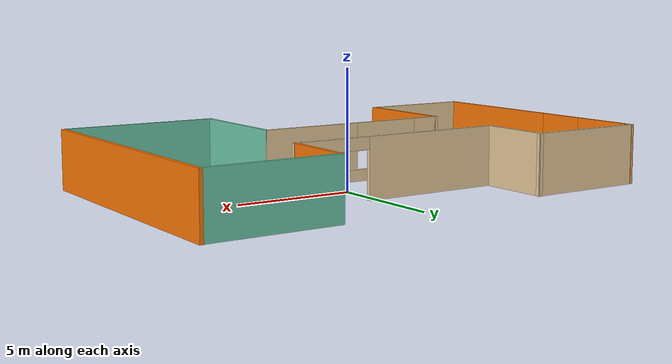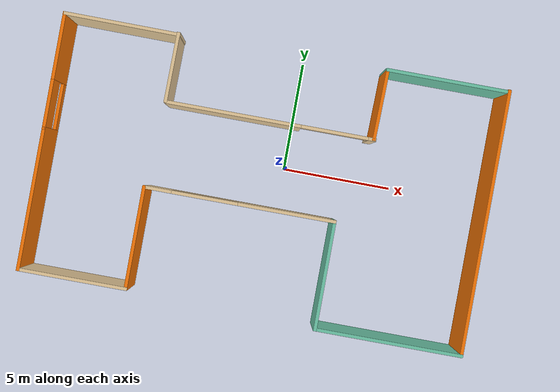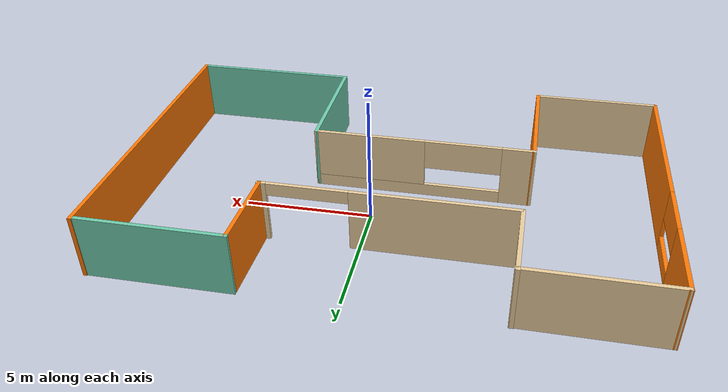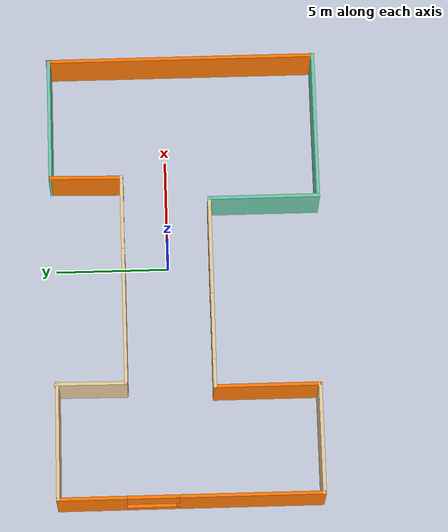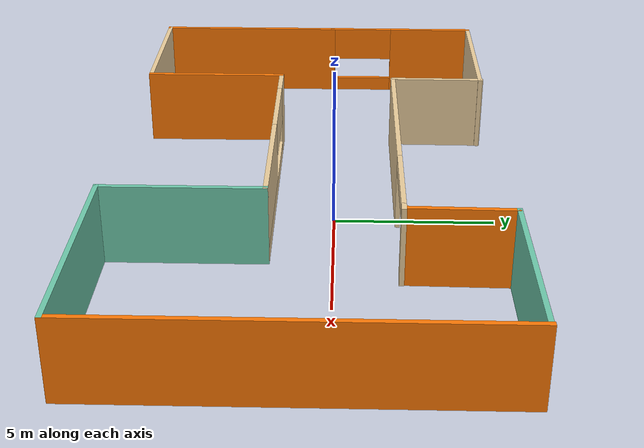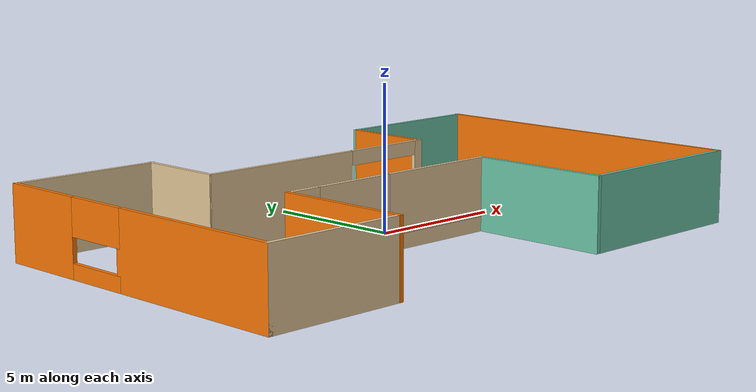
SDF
<?xml version='1.0'?>
<sdf version='1.6'>
  <model name='mwrld'>
    <pose frame=''>-0.841201 -0.809512 0 0 -0 0</pose>
    <link name='Wall_0'>
      <collision name='Wall_0_Collision'>
        <geometry>
          <box>
            <size>6.5 0.15 2.5</size>
          </box>
        </geometry>
        <pose frame=''>0 0 1.25 0 -0 0</pose>
      </collision>
      <visual name='Wall_0_Visual'>
        <pose frame=''>0 0 1.25 0 -0 0</pose>
        <geometry>
          <box>
            <size>6.5 0.15 2.5</size>
          </box>
        </geometry>
        <material>
          <script>
            <uri>file://media/materials/scripts/gazebo.material</uri>
            <name>Gazebo/Grey</name>
          </script>
          <ambient>0.996078 0.47451 0.0196078 1</ambient>
        </material>
      </visual>
      <pose frame=''>-10.025 -2.54481 0 0 0 -1.5708</pose>
    </link>
    <link name='Wall_1'>
      <collision name='Wall_1_Collision'>
        <geometry>
          <box>
            <size>5 0.15 2.5</size>
          </box>
        </geometry>
        <pose frame=''>0 0 1.25 0 -0 0</pose>
      </collision>
      <visual name='Wall_1_Visual'>
        <pose frame=''>0 0 1.25 0 -0 0</pose>
        <geometry>
          <box>
            <size>5 0.15 2.5</size>
          </box>
        </geometry>
        <material>
          <script>
            <uri>file://media/materials/scripts/gazebo.material</uri>
            <name>Gazebo/Grey</name>
          </script>
          <ambient>0.921569 0.807843 0.615686 1</ambient>
        </material>
      </visual>
      <pose frame=''>-7.6 -5.71981 0 0 -0 0</pose>
    </link>
    <link name='Wall_10'>
      <collision name='Wall_10_Collision'>
        <geometry>
          <box>
            <size>3.17734 0.15 2.5</size>
          </box>
        </geometry>
        <pose frame=''>0 0 1.25 0 -0 0</pose>
      </collision>
      <visual name='Wall_10_Visual'>
        <pose frame=''>0 0 1.25 0 -0 0</pose>
        <geometry>
          <box>
            <size>3.17734 0.15 2.5</size>
          </box>
        </geometry>
        <material>
          <script>
            <uri>file://media/materials/scripts/gazebo.material</uri>
            <name>Gazebo/Grey</name>
          </script>
          <ambient>0.921569 0.807843 0.615686 1</ambient>
        </material>
      </visual>
      <pose frame=''>-4.91175 4.3233 0 0 -0 1.56069</pose>
    </link>
    <link name='Wall_11'>
      <collision name='Wall_11_Collision'>
        <geometry>
          <box>
            <size>5.27864 0.15 2.5</size>
          </box>
        </geometry>
        <pose frame=''>0 0 1.25 0 -0 0</pose>
      </collision>
      <visual name='Wall_11_Visual'>
        <pose frame=''>0 0 1.25 0 -0 0</pose>
        <geometry>
          <box>
            <size>5.27864 0.15 2.5</size>
          </box>
        </geometry>
        <material>
          <script>
            <uri>file://media/materials/scripts/gazebo.material</uri>
            <name>Gazebo/Grey</name>
          </script>
          <ambient>0.921569 0.807843 0.615686 1</ambient>
        </material>
      </visual>
      <pose frame=''>-7.43013 5.82159 0 0 -0 3.13563</pose>
    </link>
    <link name='Wall_12'>
      <pose frame=''>-10.025 3.23354 0 0 0 -1.5708</pose>
      <visual name='Wall_12_Visual_0'>
        <pose frame=''>-1.1507 0 1.25 0 -0 0</pose>
        <geometry>
          <box>
            <size>3.0553 0.15 2.5</size>
          </box>
        </geometry>
        <material>
          <script>
            <uri>file://media/materials/scripts/gazebo.material</uri>
            <name>Gazebo/Grey</name>
          </script>
          <ambient>0.996078 0.47451 0.0196078 1</ambient>
        </material>
      </visual>
      <collision name='Wall_12_Collision_0'>
        <geometry>
          <box>
            <size>3.0553 0.15 2.5</size>
          </box>
        </geometry>
        <pose frame=''>-1.1507 0 1.25 0 -0 0</pose>
      </collision>
      <visual name='Wall_12_Visual_1'>
        <pose frame=''>1.52765 0 0.25 0 -0 0</pose>
        <geometry>
          <box>
            <size>2.30139 0.15 0.5</size>
          </box>
        </geometry>
        <material>
          <script>
            <uri>file://media/materials/scripts/gazebo.material</uri>
            <name>Gazebo/Grey</name>
          </script>
          <ambient>0.996078 0.47451 0.0196078 1</ambient>
        </material>
      </visual>
      <collision name='Wall_12_Collision_1'>
        <geometry>
          <box>
            <size>2.30139 0.15 0.5</size>
          </box>
        </geometry>
        <pose frame=''>1.52765 0 0.25 0 -0 0</pose>
      </collision>
      <visual name='Wall_12_Visual_2'>
        <pose frame=''>1.52765 0 1.9 0 -0 0</pose>
        <geometry>
          <box>
            <size>2.30139 0.15 1.2</size>
          </box>
        </geometry>
        <material>
          <script>
            <uri>file://media/materials/scripts/gazebo.material</uri>
            <name>Gazebo/Grey</name>
          </script>
          <ambient>0.996078 0.47451 0.0196078 1</ambient>
        </material>
      </visual>
      <collision name='Wall_12_Collision_2'>
        <geometry>
          <box>
            <size>2.30139 0.15 1.2</size>
          </box>
        </geometry>
        <pose frame=''>1.52765 0 1.9 0 -0 0</pose>
      </collision>
    </link>
    <link name='Wall_2'>
      <collision name='Wall_2_Collision'>
        <geometry>
          <box>
            <size>4.75 0.15 2.5</size>
          </box>
        </geometry>
        <pose frame=''>0 0 1.25 0 -0 0</pose>
      </collision>
      <visual name='Wall_2_Visual'>
        <pose frame=''>0 0 1.25 0 -0 0</pose>
        <geometry>
          <box>
            <size>4.75 0.15 2.5</size>
          </box>
        </geometry>
        <material>
          <script>
            <uri>file://media/materials/scripts/gazebo.material</uri>
            <name>Gazebo/Grey</name>
          </script>
          <ambient>0.996078 0.47451 0.0196078 1</ambient>
        </material>
      </visual>
      <pose frame=''>-5.175 -3.41981 0 0 -0 1.5708</pose>
    </link>
    <link name='Wall_3'>
      <pose frame=''>-0.875 -1.11981 0 0 -0 0</pose>
      <visual name='Wall_3_Visual_0'>
        <pose frame=''>-3.72637 0 1.25 0 -0 0</pose>
        <geometry>
          <box>
            <size>1.29726 0.15 2.5</size>
          </box>
        </geometry>
        <material>
          <script>
            <uri>file://media/materials/scripts/gazebo.material</uri>
            <name>Gazebo/Grey</name>
          </script>
          <ambient>0.921569 0.807843 0.615686 1</ambient>
        </material>
      </visual>
      <collision name='Wall_3_Collision_0'>
        <geometry>
          <box>
            <size>1.29726 0.15 2.5</size>
          </box>
        </geometry>
        <pose frame=''>-3.72637 0 1.25 0 -0 0</pose>
      </collision>
      <visual name='Wall_3_Visual_1'>
        <pose frame=''>0.648629 0 0.25 0 -0 0</pose>
        <geometry>
          <box>
            <size>7.45274 0.15 0.5</size>
          </box>
        </geometry>
        <material>
          <script>
            <uri>file://media/materials/scripts/gazebo.material</uri>
            <name>Gazebo/Grey</name>
          </script>
          <ambient>0.921569 0.807843 0.615686 1</ambient>
        </material>
      </visual>
      <collision name='Wall_3_Collision_1'>
        <geometry>
          <box>
            <size>7.45274 0.15 0.5</size>
          </box>
        </geometry>
        <pose frame=''>0.648629 0 0.25 0 -0 0</pose>
      </collision>
      <visual name='Wall_3_Visual_2'>
        <pose frame=''>2.14988 0 1.5 0 -0 0</pose>
        <geometry>
          <box>
            <size>4.45024 0.15 2</size>
          </box>
        </geometry>
        <material>
          <script>
            <uri>file://media/materials/scripts/gazebo.material</uri>
            <name>Gazebo/Grey</name>
          </script>
          <ambient>0.921569 0.807843 0.615686 1</ambient>
        </material>
      </visual>
      <collision name='Wall_3_Collision_2'>
        <geometry>
          <box>
            <size>4.45024 0.15 2</size>
          </box>
        </geometry>
        <pose frame=''>2.14988 0 1.5 0 -0 0</pose>
      </collision>
      <visual name='Wall_3_Visual_3'>
        <pose frame=''>-1.57649 0 1.9 0 -0 0</pose>
        <geometry>
          <box>
            <size>3.0025 0.15 1.2</size>
          </box>
        </geometry>
        <material>
          <script>
            <uri>file://media/materials/scripts/gazebo.material</uri>
            <name>Gazebo/Grey</name>
          </script>
          <ambient>0.921569 0.807843 0.615686 1</ambient>
        </material>
      </visual>
      <collision name='Wall_3_Collision_3'>
        <geometry>
          <box>
            <size>3.0025 0.15 1.2</size>
          </box>
        </geometry>
        <pose frame=''>-1.57649 0 1.9 0 -0 0</pose>
      </collision>
    </link>
    <link name='Wall_4'>
      <collision name='Wall_4_Collision'>
        <geometry>
          <box>
            <size>5 0.15 2.5</size>
          </box>
        </geometry>
        <pose frame=''>0 0 1.25 0 -0 0</pose>
      </collision>
      <visual name='Wall_4_Visual'>
        <pose frame=''>0 0 1.25 0 -0 0</pose>
        <geometry>
          <box>
            <size>5 0.15 2.5</size>
          </box>
        </geometry>
        <material>
          <script>
            <uri>file://media/materials/scripts/gazebo.material</uri>
            <name>Gazebo/Grey</name>
          </script>
          <ambient>0.435294 0.796078 0.67451 1</ambient>
        </material>
      </visual>
      <pose frame=''>3.425 -3.54481 0 0 0 -1.5708</pose>
    </link>
    <link name='Wall_5'>
      <collision name='Wall_5_Collision'>
        <geometry>
          <box>
            <size>6.75 0.15 2.5</size>
          </box>
        </geometry>
        <pose frame=''>0 0 1.25 0 -0 0</pose>
      </collision>
      <visual name='Wall_5_Visual'>
        <pose frame=''>0 0 1.25 0 -0 0</pose>
        <geometry>
          <box>
            <size>6.75 0.15 2.5</size>
          </box>
        </geometry>
        <material>
          <script>
            <uri>file://media/materials/scripts/gazebo.material</uri>
            <name>Gazebo/Grey</name>
          </script>
          <ambient>0.435294 0.796078 0.67451 1</ambient>
        </material>
      </visual>
      <pose frame=''>6.725 -5.96981 0 0 -0 0</pose>
    </link>
    <link name='Wall_6'>
      <collision name='Wall_6_Collision'>
        <geometry>
          <box>
            <size>12.0896 0.15 2.5</size>
          </box>
        </geometry>
        <pose frame=''>0 0 1.25 0 -0 0</pose>
      </collision>
      <visual name='Wall_6_Visual'>
        <pose frame=''>0 0 1.25 0 -0 0</pose>
        <geometry>
          <box>
            <size>12.0896 0.15 2.5</size>
          </box>
        </geometry>
        <material>
          <script>
            <uri>file://media/materials/scripts/gazebo.material</uri>
            <name>Gazebo/Grey</name>
          </script>
          <ambient>0.996078 0.47451 0.0196078 1</ambient>
        </material>
      </visual>
      <pose frame=''>10.025 0 0 0 -0 1.5708</pose>
    </link>
    <link name='Wall_7'>
      <collision name='Wall_7_Collision'>
        <geometry>
          <box>
            <size>5.60025 0.15 2.5</size>
          </box>
        </geometry>
        <pose frame=''>0 0 1.25 0 -0 0</pose>
      </collision>
      <visual name='Wall_7_Visual'>
        <pose frame=''>0 0 1.25 0 -0 0</pose>
        <geometry>
          <box>
            <size>5.60025 0.15 2.5</size>
          </box>
        </geometry>
        <material>
          <script>
            <uri>file://media/materials/scripts/gazebo.material</uri>
            <name>Gazebo/Grey</name>
          </script>
          <ambient>0.435294 0.796078 0.67451 1</ambient>
        </material>
      </visual>
      <pose frame=''>7.26933 5.93922 0 0 -0 3.14159</pose>
    </link>
    <link name='Wall_8'>
      <collision name='Wall_8_Collision'>
        <geometry>
          <box>
            <size>3.24953 0.15 2.5</size>
          </box>
        </geometry>
        <pose frame=''>0 0 1.25 0 -0 0</pose>
      </collision>
      <visual name='Wall_8_Visual'>
        <pose frame=''>0 0 1.25 0 -0 0</pose>
        <geometry>
          <box>
            <size>3.24953 0.15 2.5</size>
          </box>
        </geometry>
        <material>
          <script>
            <uri>file://media/materials/scripts/gazebo.material</uri>
            <name>Gazebo/Grey</name>
          </script>
          <ambient>0.996078 0.47451 0.0196078 1</ambient>
        </material>
      </visual>
      <pose frame=''>4.51365 4.35917 0 0 0 -1.59054</pose>
    </link>
    <link name='Wall_9'>
      <pose frame=''>-0.1914 2.77912 0 0 -0 3.14159</pose>
      <visual name='Wall_9_Visual_0'>
        <pose frame=''>-4.60518 0 1.25 0 -0 0</pose>
        <geometry>
          <box>
            <size>0.349737 0.15 2.5</size>
          </box>
        </geometry>
        <material>
          <script>
            <uri>file://media/materials/scripts/gazebo.material</uri>
            <name>Gazebo/Grey</name>
          </script>
          <ambient>0.921569 0.807843 0.615686 1</ambient>
        </material>
      </visual>
      <collision name='Wall_9_Collision_0'>
        <geometry>
          <box>
            <size>0.349737 0.15 2.5</size>
          </box>
        </geometry>
        <pose frame=''>-4.60518 0 1.25 0 -0 0</pose>
      </collision>
      <visual name='Wall_9_Visual_1'>
        <pose frame=''>1.69553 0 1.25 0 -0 0</pose>
        <geometry>
          <box>
            <size>6.16905 0.15 2.5</size>
          </box>
        </geometry>
        <material>
          <script>
            <uri>file://media/materials/scripts/gazebo.material</uri>
            <name>Gazebo/Grey</name>
          </script>
          <ambient>0.921569 0.807843 0.615686 1</ambient>
        </material>
      </visual>
      <collision name='Wall_9_Collision_1'>
        <geometry>
          <box>
            <size>6.16905 0.15 2.5</size>
          </box>
        </geometry>
        <pose frame=''>1.69553 0 1.25 0 -0 0</pose>
      </collision>
      <visual name='Wall_9_Visual_2'>
        <pose frame=''>-2.90966 0 2.25 0 -0 0</pose>
        <geometry>
          <box>
            <size>3.04132 0.15 0.5</size>
          </box>
        </geometry>
        <material>
          <script>
            <uri>file://media/materials/scripts/gazebo.material</uri>
            <name>Gazebo/Grey</name>
          </script>
          <ambient>0.921569 0.807843 0.615686 1</ambient>
        </material>
      </visual>
      <collision name='Wall_9_Collision_2'>
        <geometry>
          <box>
            <size>3.04132 0.15 0.5</size>
          </box>
        </geometry>
        <pose frame=''>-2.90966 0 2.25 0 -0 0</pose>
      </collision>
    </link>
    <static>1</static>
  </model>
</sdf>
